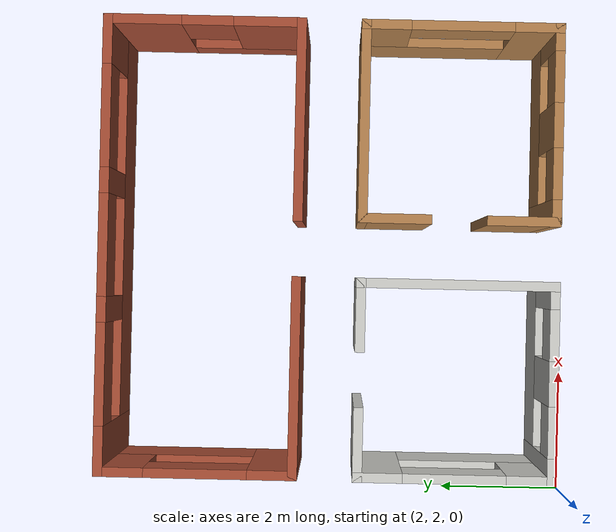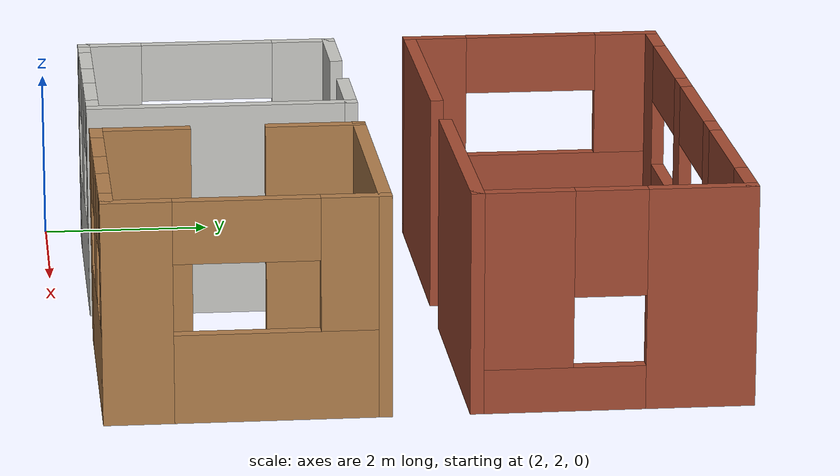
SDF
<?xml version='1.0'?>
<sdf version='1.6'>
  <model name='planning_project'>
    <pose frame=''>6 6 0 0 -0 0</pose>
    <link name='Wall_10'>
      <pose frame=''>-2 -3.5 0 0 -0 0</pose>
      <visual name='Wall_10_Visual_0'>
        <pose frame=''>-1.3625 0 1.25 0 -0 0</pose>
        <geometry>
          <box>
            <size>0.425 0.15 2.5</size>
          </box>
        </geometry>
        <material>
          <script>
            <uri>file://media/materials/scripts/gazebo.material</uri>
            <name>Gazebo/CeilingTiled</name>
          </script>
          <ambient>1 1 1 1</ambient>
        </material>
      </visual>
      <collision name='Wall_10_Collision_0'>
        <geometry>
          <box>
            <size>0.425 0.15 2.5</size>
          </box>
        </geometry>
        <pose frame=''>-1.3625 0 1.25 0 -0 0</pose>
      </collision>
      <visual name='Wall_10_Visual_1'>
        <pose frame=''>0.2125 0 0.5 0 -0 0</pose>
        <geometry>
          <box>
            <size>2.725 0.15 1</size>
          </box>
        </geometry>
        <material>
          <script>
            <uri>file://media/materials/scripts/gazebo.material</uri>
            <name>Gazebo/CeilingTiled</name>
          </script>
          <ambient>1 1 1 1</ambient>
        </material>
      </visual>
      <collision name='Wall_10_Collision_1'>
        <geometry>
          <box>
            <size>2.725 0.15 1</size>
          </box>
        </geometry>
        <pose frame=''>0.2125 0 0.5 0 -0 0</pose>
      </collision>
      <visual name='Wall_10_Visual_2'>
        <pose frame=''>0 0 1.75 0 -0 0</pose>
        <geometry>
          <box>
            <size>0.7 0.15 1.5</size>
          </box>
        </geometry>
        <material>
          <script>
            <uri>file://media/materials/scripts/gazebo.material</uri>
            <name>Gazebo/CeilingTiled</name>
          </script>
          <ambient>1 1 1 1</ambient>
        </material>
      </visual>
      <collision name='Wall_10_Collision_2'>
        <geometry>
          <box>
            <size>0.7 0.15 1.5</size>
          </box>
        </geometry>
        <pose frame=''>0 0 1.75 0 -0 0</pose>
      </collision>
      <visual name='Wall_10_Visual_3'>
        <pose frame=''>1.3625 0 1.75 0 -0 0</pose>
        <geometry>
          <box>
            <size>0.425 0.15 1.5</size>
          </box>
        </geometry>
        <material>
          <script>
            <uri>file://media/materials/scripts/gazebo.material</uri>
            <name>Gazebo/CeilingTiled</name>
          </script>
          <ambient>1 1 1 1</ambient>
        </material>
      </visual>
      <collision name='Wall_10_Collision_3'>
        <geometry>
          <box>
            <size>0.425 0.15 1.5</size>
          </box>
        </geometry>
        <pose frame=''>1.3625 0 1.75 0 -0 0</pose>
      </collision>
      <visual name='Wall_10_Visual_4'>
        <pose frame=''>-0.75 0 2.15 0 -0 0</pose>
        <geometry>
          <box>
            <size>0.8 0.15 0.7</size>
          </box>
        </geometry>
        <material>
          <script>
            <uri>file://media/materials/scripts/gazebo.material</uri>
            <name>Gazebo/CeilingTiled</name>
          </script>
          <ambient>1 1 1 1</ambient>
        </material>
      </visual>
      <collision name='Wall_10_Collision_4'>
        <geometry>
          <box>
            <size>0.8 0.15 0.7</size>
          </box>
        </geometry>
        <pose frame=''>-0.75 0 2.15 0 -0 0</pose>
      </collision>
      <visual name='Wall_10_Visual_5'>
        <pose frame=''>0.75 0 2.15 0 -0 0</pose>
        <geometry>
          <box>
            <size>0.8 0.15 0.7</size>
          </box>
        </geometry>
        <material>
          <script>
            <uri>file://media/materials/scripts/gazebo.material</uri>
            <name>Gazebo/CeilingTiled</name>
          </script>
          <ambient>1 1 1 1</ambient>
        </material>
      </visual>
      <collision name='Wall_10_Collision_5'>
        <geometry>
          <box>
            <size>0.8 0.15 0.7</size>
          </box>
        </geometry>
        <pose frame=''>0.75 0 2.15 0 -0 0</pose>
      </collision>
    </link>
    <link name='Wall_13'>
      <pose frame=''>2 -3.5 0 0 -0 0</pose>
      <visual name='Wall_13_Visual_0'>
        <pose frame=''>-1.3625 0 1.25 0 -0 0</pose>
        <geometry>
          <box>
            <size>0.425 0.15 2.5</size>
          </box>
        </geometry>
        <material>
          <script>
            <uri>file://media/materials/scripts/gazebo.material</uri>
            <name>Gazebo/Wood</name>
          </script>
          <ambient>1 1 1 1</ambient>
        </material>
      </visual>
      <collision name='Wall_13_Collision_0'>
        <geometry>
          <box>
            <size>0.425 0.15 2.5</size>
          </box>
        </geometry>
        <pose frame=''>-1.3625 0 1.25 0 -0 0</pose>
      </collision>
      <visual name='Wall_13_Visual_1'>
        <pose frame=''>0.2125 0 0.5 0 -0 0</pose>
        <geometry>
          <box>
            <size>2.725 0.15 1</size>
          </box>
        </geometry>
        <material>
          <script>
            <uri>file://media/materials/scripts/gazebo.material</uri>
            <name>Gazebo/Wood</name>
          </script>
          <ambient>1 1 1 1</ambient>
        </material>
      </visual>
      <collision name='Wall_13_Collision_1'>
        <geometry>
          <box>
            <size>2.725 0.15 1</size>
          </box>
        </geometry>
        <pose frame=''>0.2125 0 0.5 0 -0 0</pose>
      </collision>
      <visual name='Wall_13_Visual_2'>
        <pose frame=''>0 0 1.75 0 -0 0</pose>
        <geometry>
          <box>
            <size>0.7 0.15 1.5</size>
          </box>
        </geometry>
        <material>
          <script>
            <uri>file://media/materials/scripts/gazebo.material</uri>
            <name>Gazebo/Wood</name>
          </script>
          <ambient>1 1 1 1</ambient>
        </material>
      </visual>
      <collision name='Wall_13_Collision_2'>
        <geometry>
          <box>
            <size>0.7 0.15 1.5</size>
          </box>
        </geometry>
        <pose frame=''>0 0 1.75 0 -0 0</pose>
      </collision>
      <visual name='Wall_13_Visual_3'>
        <pose frame=''>1.3625 0 1.75 0 -0 0</pose>
        <geometry>
          <box>
            <size>0.425 0.15 1.5</size>
          </box>
        </geometry>
        <material>
          <script>
            <uri>file://media/materials/scripts/gazebo.material</uri>
            <name>Gazebo/Wood</name>
          </script>
          <ambient>1 1 1 1</ambient>
        </material>
      </visual>
      <collision name='Wall_13_Collision_3'>
        <geometry>
          <box>
            <size>0.425 0.15 1.5</size>
          </box>
        </geometry>
        <pose frame=''>1.3625 0 1.75 0 -0 0</pose>
      </collision>
      <visual name='Wall_13_Visual_4'>
        <pose frame=''>-0.75 0 2.15 0 -0 0</pose>
        <geometry>
          <box>
            <size>0.8 0.15 0.7</size>
          </box>
        </geometry>
        <material>
          <script>
            <uri>file://media/materials/scripts/gazebo.material</uri>
            <name>Gazebo/Wood</name>
          </script>
          <ambient>1 1 1 1</ambient>
        </material>
      </visual>
      <collision name='Wall_13_Collision_4'>
        <geometry>
          <box>
            <size>0.8 0.15 0.7</size>
          </box>
        </geometry>
        <pose frame=''>-0.75 0 2.15 0 -0 0</pose>
      </collision>
      <visual name='Wall_13_Visual_5'>
        <pose frame=''>0.75 0 2.15 0 -0 0</pose>
        <geometry>
          <box>
            <size>0.8 0.15 0.7</size>
          </box>
        </geometry>
        <material>
          <script>
            <uri>file://media/materials/scripts/gazebo.material</uri>
            <name>Gazebo/Wood</name>
          </script>
          <ambient>1 1 1 1</ambient>
        </material>
      </visual>
      <collision name='Wall_13_Collision_5'>
        <geometry>
          <box>
            <size>0.8 0.15 0.7</size>
          </box>
        </geometry>
        <pose frame=''>0.75 0 2.15 0 -0 0</pose>
      </collision>
    </link>
    <link name='Wall_14'>
      <pose frame=''>3.5 -2 0 0 -0 1.5708</pose>
      <visual name='Wall_14_Visual_0'>
        <pose frame=''>-1.1875 0 1.25 0 -0 0</pose>
        <geometry>
          <box>
            <size>0.775 0.15 2.5</size>
          </box>
        </geometry>
        <material>
          <script>
            <uri>file://media/materials/scripts/gazebo.material</uri>
            <name>Gazebo/Wood</name>
          </script>
          <ambient>1 1 1 1</ambient>
        </material>
      </visual>
      <collision name='Wall_14_Collision_0'>
        <geometry>
          <box>
            <size>0.775 0.15 2.5</size>
          </box>
        </geometry>
        <pose frame=''>-1.1875 0 1.25 0 -0 0</pose>
      </collision>
      <visual name='Wall_14_Visual_1'>
        <pose frame=''>0.3875 0 0.5 0 -0 0</pose>
        <geometry>
          <box>
            <size>2.375 0.15 1</size>
          </box>
        </geometry>
        <material>
          <script>
            <uri>file://media/materials/scripts/gazebo.material</uri>
            <name>Gazebo/Wood</name>
          </script>
          <ambient>1 1 1 1</ambient>
        </material>
      </visual>
      <collision name='Wall_14_Collision_1'>
        <geometry>
          <box>
            <size>2.375 0.15 1</size>
          </box>
        </geometry>
        <pose frame=''>0.3875 0 0.5 0 -0 0</pose>
      </collision>
      <visual name='Wall_14_Visual_2'>
        <pose frame=''>1.1875 0 1.75 0 -0 0</pose>
        <geometry>
          <box>
            <size>0.775 0.15 1.5</size>
          </box>
        </geometry>
        <material>
          <script>
            <uri>file://media/materials/scripts/gazebo.material</uri>
            <name>Gazebo/Wood</name>
          </script>
          <ambient>1 1 1 1</ambient>
        </material>
      </visual>
      <collision name='Wall_14_Collision_2'>
        <geometry>
          <box>
            <size>0.775 0.15 1.5</size>
          </box>
        </geometry>
        <pose frame=''>1.1875 0 1.75 0 -0 0</pose>
      </collision>
      <visual name='Wall_14_Visual_3'>
        <pose frame=''>0 0 2.15 0 -0 0</pose>
        <geometry>
          <box>
            <size>1.6 0.15 0.7</size>
          </box>
        </geometry>
        <material>
          <script>
            <uri>file://media/materials/scripts/gazebo.material</uri>
            <name>Gazebo/Wood</name>
          </script>
          <ambient>1 1 1 1</ambient>
        </material>
      </visual>
      <collision name='Wall_14_Collision_3'>
        <geometry>
          <box>
            <size>1.6 0.15 0.7</size>
          </box>
        </geometry>
        <pose frame=''>0 0 2.15 0 -0 0</pose>
      </collision>
    </link>
    <link name='Wall_18'>
      <collision name='Wall_18_Collision'>
        <geometry>
          <box>
            <size>1.15 0.15 2.5</size>
          </box>
        </geometry>
        <pose frame=''>0 0 1.25 0 -0 0</pose>
      </collision>
      <visual name='Wall_18_Visual'>
        <pose frame=''>0 0 1.25 0 -0 0</pose>
        <geometry>
          <box>
            <size>1.15 0.15 2.5</size>
          </box>
        </geometry>
        <material>
          <script>
            <uri>file://media/materials/scripts/gazebo.material</uri>
            <name>Gazebo/Wood</name>
          </script>
          <ambient>1 1 1 1</ambient>
        </material>
      </visual>
      <pose frame=''>0.5 -3 0 0 -0 1.5708</pose>
    </link>
    <link name='Wall_20'>
      <collision name='Wall_20_Collision'>
        <geometry>
          <box>
            <size>3.15 0.15 2.5</size>
          </box>
        </geometry>
        <pose frame=''>0 0 1.25 0 -0 0</pose>
      </collision>
      <visual name='Wall_20_Visual'>
        <pose frame=''>0 0 1.25 0 -0 0</pose>
        <geometry>
          <box>
            <size>3.15 0.15 2.5</size>
          </box>
        </geometry>
        <material>
          <script>
            <uri>file://media/materials/scripts/gazebo.material</uri>
            <name>Gazebo/Wood</name>
          </script>
          <ambient>1 1 1 1</ambient>
        </material>
      </visual>
      <pose frame=''>2 -0.5 0 0 -0 3.14159</pose>
    </link>
    <link name='Wall_22'>
      <collision name='Wall_22_Collision'>
        <geometry>
          <box>
            <size>1.15 0.15 2.5</size>
          </box>
        </geometry>
        <pose frame=''>0 0 1.25 0 -0 0</pose>
      </collision>
      <visual name='Wall_22_Visual'>
        <pose frame=''>0 0 1.25 0 -0 0</pose>
        <geometry>
          <box>
            <size>1.15 0.15 2.5</size>
          </box>
        </geometry>
        <material>
          <script>
            <uri>file://media/materials/scripts/gazebo.material</uri>
            <name>Gazebo/Wood</name>
          </script>
          <ambient>1 1 1 1</ambient>
        </material>
      </visual>
      <pose frame=''>0.5 -1 0 0 0 -1.5708</pose>
    </link>
    <link name='Wall_24'>
      <collision name='Wall_24_Collision'>
        <geometry>
          <box>
            <size>3.15 0.15 2.5</size>
          </box>
        </geometry>
        <pose frame=''>0 0 1.25 0 -0 0</pose>
      </collision>
      <visual name='Wall_24_Visual'>
        <pose frame=''>0 0 1.25 0 -0 0</pose>
        <geometry>
          <box>
            <size>3.15 0.15 2.5</size>
          </box>
        </geometry>
        <material>
          <script>
            <uri>file://media/materials/scripts/gazebo.material</uri>
            <name>Gazebo/CeilingTiled</name>
          </script>
          <ambient>1 1 1 1</ambient>
        </material>
      </visual>
      <pose frame=''>-0.5 -2 0 0 -0 1.5708</pose>
    </link>
    <link name='Wall_25'>
      <collision name='Wall_25_Collision'>
        <geometry>
          <box>
            <size>1.15 0.15 2.5</size>
          </box>
        </geometry>
        <pose frame=''>0 0 1.25 0 -0 0</pose>
      </collision>
      <visual name='Wall_25_Visual'>
        <pose frame=''>0 0 1.25 0 -0 0</pose>
        <geometry>
          <box>
            <size>1.15 0.15 2.5</size>
          </box>
        </geometry>
        <material>
          <script>
            <uri>file://media/materials/scripts/gazebo.material</uri>
            <name>Gazebo/CeilingTiled</name>
          </script>
          <ambient>1 1 1 1</ambient>
        </material>
      </visual>
      <pose frame=''>-1 -0.5 0 0 -0 3.14159</pose>
    </link>
    <link name='Wall_27'>
      <collision name='Wall_27_Collision'>
        <geometry>
          <box>
            <size>3.15 0.15 2.5</size>
          </box>
        </geometry>
        <pose frame=''>0 0 1.25 0 -0 0</pose>
      </collision>
      <visual name='Wall_27_Visual'>
        <pose frame=''>0 0 1.25 0 -0 0</pose>
        <geometry>
          <box>
            <size>3.15 0.15 2.5</size>
          </box>
        </geometry>
        <material>
          <script>
            <uri>file://media/materials/scripts/gazebo.material</uri>
            <name>Gazebo/Bricks</name>
          </script>
          <ambient>1 1 1 1</ambient>
        </material>
      </visual>
      <pose frame=''>-2 0.5 0 0 -0 0</pose>
    </link>
    <link name='Wall_33'>
      <pose frame=''>-3.5 2 0 0 -0 1.5708</pose>
      <visual name='Wall_33_Visual_0'>
        <pose frame=''>-1.1875 0 1.25 0 -0 0</pose>
        <geometry>
          <box>
            <size>0.775 0.15 2.5</size>
          </box>
        </geometry>
        <material>
          <script>
            <uri>file://media/materials/scripts/gazebo.material</uri>
            <name>Gazebo/Bricks</name>
          </script>
          <ambient>1 1 1 1</ambient>
        </material>
      </visual>
      <collision name='Wall_33_Collision_0'>
        <geometry>
          <box>
            <size>0.775 0.15 2.5</size>
          </box>
        </geometry>
        <pose frame=''>-1.1875 0 1.25 0 -0 0</pose>
      </collision>
      <visual name='Wall_33_Visual_1'>
        <pose frame=''>0.3875 0 0.5 0 -0 0</pose>
        <geometry>
          <box>
            <size>2.375 0.15 1</size>
          </box>
        </geometry>
        <material>
          <script>
            <uri>file://media/materials/scripts/gazebo.material</uri>
            <name>Gazebo/Bricks</name>
          </script>
          <ambient>1 1 1 1</ambient>
        </material>
      </visual>
      <collision name='Wall_33_Collision_1'>
        <geometry>
          <box>
            <size>2.375 0.15 1</size>
          </box>
        </geometry>
        <pose frame=''>0.3875 0 0.5 0 -0 0</pose>
      </collision>
      <visual name='Wall_33_Visual_2'>
        <pose frame=''>1.1875 0 1.75 0 -0 0</pose>
        <geometry>
          <box>
            <size>0.775 0.15 1.5</size>
          </box>
        </geometry>
        <material>
          <script>
            <uri>file://media/materials/scripts/gazebo.material</uri>
            <name>Gazebo/Bricks</name>
          </script>
          <ambient>1 1 1 1</ambient>
        </material>
      </visual>
      <collision name='Wall_33_Collision_2'>
        <geometry>
          <box>
            <size>0.775 0.15 1.5</size>
          </box>
        </geometry>
        <pose frame=''>1.1875 0 1.75 0 -0 0</pose>
      </collision>
      <visual name='Wall_33_Visual_3'>
        <pose frame=''>0 0 2.15 0 -0 0</pose>
        <geometry>
          <box>
            <size>1.6 0.15 0.7</size>
          </box>
        </geometry>
        <material>
          <script>
            <uri>file://media/materials/scripts/gazebo.material</uri>
            <name>Gazebo/Bricks</name>
          </script>
          <ambient>1 1 1 1</ambient>
        </material>
      </visual>
      <collision name='Wall_33_Collision_3'>
        <geometry>
          <box>
            <size>1.6 0.15 0.7</size>
          </box>
        </geometry>
        <pose frame=''>0 0 2.15 0 -0 0</pose>
      </collision>
    </link>
    <link name='Wall_34'>
      <pose frame=''>0 3.5 0 0 -0 0</pose>
      <visual name='Wall_34_Visual_0'>
        <pose frame=''>-3.1875 0 1.25 0 -0 0</pose>
        <geometry>
          <box>
            <size>0.775 0.15 2.5</size>
          </box>
        </geometry>
        <material>
          <script>
            <uri>file://media/materials/scripts/gazebo.material</uri>
            <name>Gazebo/Bricks</name>
          </script>
          <ambient>1 1 1 1</ambient>
        </material>
      </visual>
      <collision name='Wall_34_Collision_0'>
        <geometry>
          <box>
            <size>0.775 0.15 2.5</size>
          </box>
        </geometry>
        <pose frame=''>-3.1875 0 1.25 0 -0 0</pose>
      </collision>
      <visual name='Wall_34_Visual_1'>
        <pose frame=''>0.3875 0 0.5 0 -0 0</pose>
        <geometry>
          <box>
            <size>6.375 0.15 1</size>
          </box>
        </geometry>
        <material>
          <script>
            <uri>file://media/materials/scripts/gazebo.material</uri>
            <name>Gazebo/Bricks</name>
          </script>
          <ambient>1 1 1 1</ambient>
        </material>
      </visual>
      <collision name='Wall_34_Collision_1'>
        <geometry>
          <box>
            <size>6.375 0.15 1</size>
          </box>
        </geometry>
        <pose frame=''>0.3875 0 0.5 0 -0 0</pose>
      </collision>
      <visual name='Wall_34_Visual_2'>
        <pose frame=''>-1 0 1.75 0 -0 0</pose>
        <geometry>
          <box>
            <size>0.4 0.15 1.5</size>
          </box>
        </geometry>
        <material>
          <script>
            <uri>file://media/materials/scripts/gazebo.material</uri>
            <name>Gazebo/Bricks</name>
          </script>
          <ambient>1 1 1 1</ambient>
        </material>
      </visual>
      <collision name='Wall_34_Collision_2'>
        <geometry>
          <box>
            <size>0.4 0.15 1.5</size>
          </box>
        </geometry>
        <pose frame=''>-1 0 1.75 0 -0 0</pose>
      </collision>
      <visual name='Wall_34_Visual_3'>
        <pose frame=''>1 0 1.75 0 -0 0</pose>
        <geometry>
          <box>
            <size>0.4 0.15 1.5</size>
          </box>
        </geometry>
        <material>
          <script>
            <uri>file://media/materials/scripts/gazebo.material</uri>
            <name>Gazebo/Bricks</name>
          </script>
          <ambient>1 1 1 1</ambient>
        </material>
      </visual>
      <collision name='Wall_34_Collision_3'>
        <geometry>
          <box>
            <size>0.4 0.15 1.5</size>
          </box>
        </geometry>
        <pose frame=''>1 0 1.75 0 -0 0</pose>
      </collision>
      <visual name='Wall_34_Visual_4'>
        <pose frame=''>3.1875 0 1.75 0 -0 0</pose>
        <geometry>
          <box>
            <size>0.775 0.15 1.5</size>
          </box>
        </geometry>
        <material>
          <script>
            <uri>file://media/materials/scripts/gazebo.material</uri>
            <name>Gazebo/Bricks</name>
          </script>
          <ambient>1 1 1 1</ambient>
        </material>
      </visual>
      <collision name='Wall_34_Collision_4'>
        <geometry>
          <box>
            <size>0.775 0.15 1.5</size>
          </box>
        </geometry>
        <pose frame=''>3.1875 0 1.75 0 -0 0</pose>
      </collision>
      <visual name='Wall_34_Visual_5'>
        <pose frame=''>-2 0 2.15 0 -0 0</pose>
        <geometry>
          <box>
            <size>1.6 0.15 0.7</size>
          </box>
        </geometry>
        <material>
          <script>
            <uri>file://media/materials/scripts/gazebo.material</uri>
            <name>Gazebo/Bricks</name>
          </script>
          <ambient>1 1 1 1</ambient>
        </material>
      </visual>
      <collision name='Wall_34_Collision_5'>
        <geometry>
          <box>
            <size>1.6 0.15 0.7</size>
          </box>
        </geometry>
        <pose frame=''>-2 0 2.15 0 -0 0</pose>
      </collision>
      <visual name='Wall_34_Visual_6'>
        <pose frame=''>0 0 2.15 0 -0 0</pose>
        <geometry>
          <box>
            <size>1.6 0.15 0.7</size>
          </box>
        </geometry>
        <material>
          <script>
            <uri>file://media/materials/scripts/gazebo.material</uri>
            <name>Gazebo/Bricks</name>
          </script>
          <ambient>1 1 1 1</ambient>
        </material>
      </visual>
      <collision name='Wall_34_Collision_6'>
        <geometry>
          <box>
            <size>1.6 0.15 0.7</size>
          </box>
        </geometry>
        <pose frame=''>0 0 2.15 0 -0 0</pose>
      </collision>
      <visual name='Wall_34_Visual_7'>
        <pose frame=''>2 0 2.15 0 -0 0</pose>
        <geometry>
          <box>
            <size>1.6 0.15 0.7</size>
          </box>
        </geometry>
        <material>
          <script>
            <uri>file://media/materials/scripts/gazebo.material</uri>
            <name>Gazebo/Bricks</name>
          </script>
          <ambient>1 1 1 1</ambient>
        </material>
      </visual>
      <collision name='Wall_34_Collision_7'>
        <geometry>
          <box>
            <size>1.6 0.15 0.7</size>
          </box>
        </geometry>
        <pose frame=''>2 0 2.15 0 -0 0</pose>
      </collision>
    </link>
    <link name='Wall_35'>
      <pose frame=''>3.5 2 0 0 0 -1.5708</pose>
      <visual name='Wall_35_Visual_0'>
        <pose frame=''>-0.967556 0 1.25 0 -0 0</pose>
        <geometry>
          <box>
            <size>1.21489 0.15 2.5</size>
          </box>
        </geometry>
        <material>
          <script>
            <uri>file://media/materials/scripts/gazebo.material</uri>
            <name>Gazebo/Bricks</name>
          </script>
          <ambient>1 1 1 1</ambient>
        </material>
      </visual>
      <collision name='Wall_35_Collision_0'>
        <geometry>
          <box>
            <size>1.21489 0.15 2.5</size>
          </box>
        </geometry>
        <pose frame=''>-0.967556 0 1.25 0 -0 0</pose>
      </collision>
      <visual name='Wall_35_Visual_1'>
        <pose frame=''>0.607444 0 0.25 0 -0 0</pose>
        <geometry>
          <box>
            <size>1.93511 0.15 0.5</size>
          </box>
        </geometry>
        <material>
          <script>
            <uri>file://media/materials/scripts/gazebo.material</uri>
            <name>Gazebo/Bricks</name>
          </script>
          <ambient>1 1 1 1</ambient>
        </material>
      </visual>
      <collision name='Wall_35_Collision_1'>
        <geometry>
          <box>
            <size>1.93511 0.15 0.5</size>
          </box>
        </geometry>
        <pose frame=''>0.607444 0 0.25 0 -0 0</pose>
      </collision>
      <visual name='Wall_35_Visual_2'>
        <pose frame=''>1.00744 0 1.5 0 -0 0</pose>
        <geometry>
          <box>
            <size>1.13511 0.15 2</size>
          </box>
        </geometry>
        <material>
          <script>
            <uri>file://media/materials/scripts/gazebo.material</uri>
            <name>Gazebo/Bricks</name>
          </script>
          <ambient>1 1 1 1</ambient>
        </material>
      </visual>
      <collision name='Wall_35_Collision_2'>
        <geometry>
          <box>
            <size>1.13511 0.15 2</size>
          </box>
        </geometry>
        <pose frame=''>1.00744 0 1.5 0 -0 0</pose>
      </collision>
      <visual name='Wall_35_Visual_3'>
        <pose frame=''>0.039888 0 1.9 0 -0 0</pose>
        <geometry>
          <box>
            <size>0.8 0.15 1.2</size>
          </box>
        </geometry>
        <material>
          <script>
            <uri>file://media/materials/scripts/gazebo.material</uri>
            <name>Gazebo/Bricks</name>
          </script>
          <ambient>1 1 1 1</ambient>
        </material>
      </visual>
      <collision name='Wall_35_Collision_3'>
        <geometry>
          <box>
            <size>0.8 0.15 1.2</size>
          </box>
        </geometry>
        <pose frame=''>0.039888 0 1.9 0 -0 0</pose>
      </collision>
    </link>
    <link name='Wall_36'>
      <collision name='Wall_36_Collision'>
        <geometry>
          <box>
            <size>3.15 0.15 2.5</size>
          </box>
        </geometry>
        <pose frame=''>0 0 1.25 0 -0 0</pose>
      </collision>
      <visual name='Wall_36_Visual'>
        <pose frame=''>0 0 1.25 0 -0 0</pose>
        <geometry>
          <box>
            <size>3.15 0.15 2.5</size>
          </box>
        </geometry>
        <material>
          <script>
            <uri>file://media/materials/scripts/gazebo.material</uri>
            <name>Gazebo/Bricks</name>
          </script>
          <ambient>1 1 1 1</ambient>
        </material>
      </visual>
      <pose frame=''>2 0.5 0 0 -0 3.14159</pose>
    </link>
    <link name='Wall_5'>
      <collision name='Wall_5_Collision'>
        <geometry>
          <box>
            <size>1.15 0.15 2.5</size>
          </box>
        </geometry>
        <pose frame=''>0 0 1.25 0 -0 0</pose>
      </collision>
      <visual name='Wall_5_Visual'>
        <pose frame=''>0 0 1.25 0 -0 0</pose>
        <geometry>
          <box>
            <size>1.15 0.15 2.5</size>
          </box>
        </geometry>
        <material>
          <script>
            <uri>file://media/materials/scripts/gazebo.material</uri>
            <name>Gazebo/CeilingTiled</name>
          </script>
          <ambient>1 1 1 1</ambient>
        </material>
      </visual>
      <pose frame=''>-3 -0.5 0 0 -0 0</pose>
    </link>
    <link name='Wall_9'>
      <pose frame=''>-3.5 -2 0 0 0 -1.5708</pose>
      <visual name='Wall_9_Visual_0'>
        <pose frame=''>-1.1875 0 1.25 0 -0 0</pose>
        <geometry>
          <box>
            <size>0.775 0.15 2.5</size>
          </box>
        </geometry>
        <material>
          <script>
            <uri>file://media/materials/scripts/gazebo.material</uri>
            <name>Gazebo/CeilingTiled</name>
          </script>
          <ambient>1 1 1 1</ambient>
        </material>
      </visual>
      <collision name='Wall_9_Collision_0'>
        <geometry>
          <box>
            <size>0.775 0.15 2.5</size>
          </box>
        </geometry>
        <pose frame=''>-1.1875 0 1.25 0 -0 0</pose>
      </collision>
      <visual name='Wall_9_Visual_1'>
        <pose frame=''>0.3875 0 0.5 0 -0 0</pose>
        <geometry>
          <box>
            <size>2.375 0.15 1</size>
          </box>
        </geometry>
        <material>
          <script>
            <uri>file://media/materials/scripts/gazebo.material</uri>
            <name>Gazebo/CeilingTiled</name>
          </script>
          <ambient>1 1 1 1</ambient>
        </material>
      </visual>
      <collision name='Wall_9_Collision_1'>
        <geometry>
          <box>
            <size>2.375 0.15 1</size>
          </box>
        </geometry>
        <pose frame=''>0.3875 0 0.5 0 -0 0</pose>
      </collision>
      <visual name='Wall_9_Visual_2'>
        <pose frame=''>1.1875 0 1.75 0 -0 0</pose>
        <geometry>
          <box>
            <size>0.775 0.15 1.5</size>
          </box>
        </geometry>
        <material>
          <script>
            <uri>file://media/materials/scripts/gazebo.material</uri>
            <name>Gazebo/CeilingTiled</name>
          </script>
          <ambient>1 1 1 1</ambient>
        </material>
      </visual>
      <collision name='Wall_9_Collision_2'>
        <geometry>
          <box>
            <size>0.775 0.15 1.5</size>
          </box>
        </geometry>
        <pose frame=''>1.1875 0 1.75 0 -0 0</pose>
      </collision>
      <visual name='Wall_9_Visual_3'>
        <pose frame=''>0 0 2.15 0 -0 0</pose>
        <geometry>
          <box>
            <size>1.6 0.15 0.7</size>
          </box>
        </geometry>
        <material>
          <script>
            <uri>file://media/materials/scripts/gazebo.material</uri>
            <name>Gazebo/CeilingTiled</name>
          </script>
          <ambient>1 1 1 1</ambient>
        </material>
      </visual>
      <collision name='Wall_9_Collision_3'>
        <geometry>
          <box>
            <size>1.6 0.15 0.7</size>
          </box>
        </geometry>
        <pose frame=''>0 0 2.15 0 -0 0</pose>
      </collision>
    </link>
    <static>1</static>
  </model>
</sdf>
